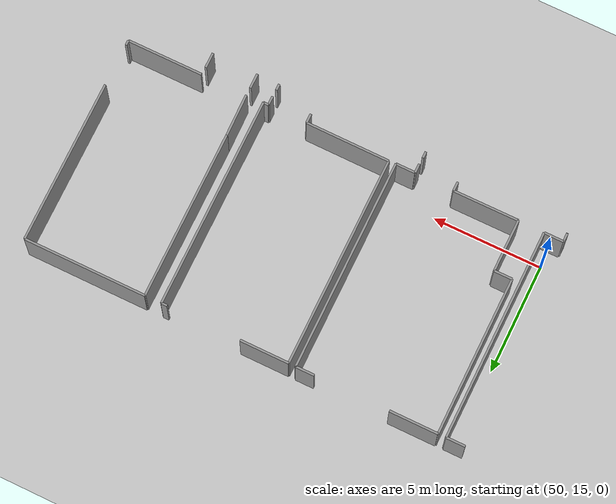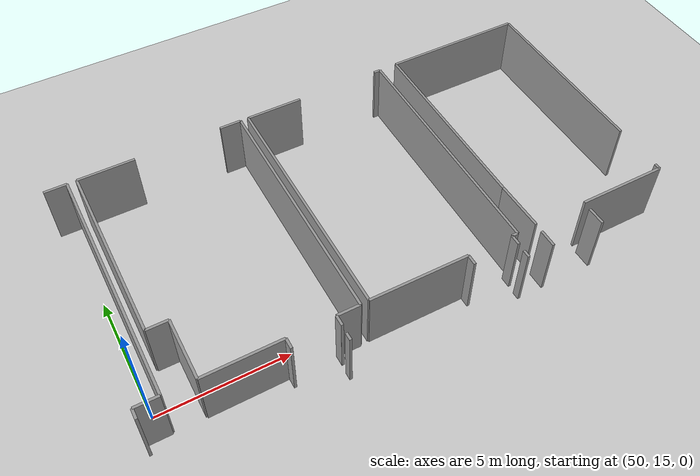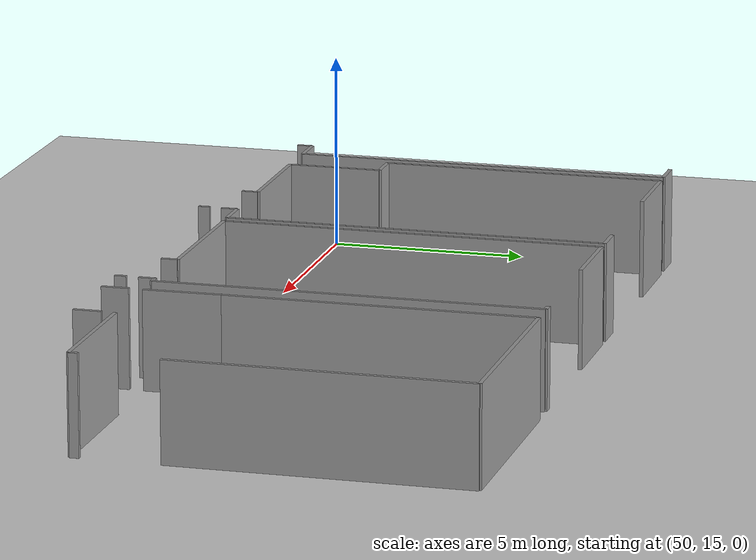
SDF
<sdf version="1.6">
 <world name="default">
  <model name="ground_plane">
   <static>1</static>
   <link name="link">
    <collision name="collision">
     <geometry><plane><normal>0 0 1</normal><size>100 100</size></plane></geometry>
     <surface><friction><ode><mu>100</mu><mu2>50</mu2></ode></friction></surface>
    </collision>
    <visual name="visual">
     <cast_shadows>0</cast_shadows>
     <geometry><plane><normal>0 0 1</normal><size>100 100</size></plane></geometry>
     <material>
      <script><uri>file://media/materials/scripts/gazebo.material</uri><name>Gazebo/Grey</name></script>
     </material>
    </visual>
   </link>
  </model>
  <model name="0510032197_A_40_1_105">
   <static>1</static>
   <link name="Wall_170">
    <collision name="Wall_170_Collision">
     <geometry><box><size>0.865542266679 0.1 2.5</size></box></geometry>
     <pose>0.432771133339 0 1.25 0 0 0</pose>
    </collision>
    <visual name="Wall_170_Visual">
     <pose>0.432771133339 0 1.25 0 0 0</pose>
     <geometry><box><size>0.865542266679 0.1 2.5</size></box></geometry>
     <material>
      <script><uri>file://media/materials/scripts/gazebo.material</uri><name>Gazebo/Grey</name></script>
      <ambient>1 1 1 1</ambient>
     </material>
    </visual>
    <pose>115.051030135 -0.327025000318 0 0 0 0.0</pose>
   </link>
   <link name="Wall_171">
    <collision name="Wall_171_Collision">
     <geometry><box><size>9.62963433699 0.1 2.5</size></box></geometry>
     <pose>4.81481716849 0 1.25 0 0 0</pose>
    </collision>
    <visual name="Wall_171_Visual">
     <pose>4.81481716849 0 1.25 0 0 0</pose>
     <geometry><box><size>9.62963433699 0.1 2.5</size></box></geometry>
     <material>
      <script><uri>file://media/materials/scripts/gazebo.material</uri><name>Gazebo/Grey</name></script>
      <ambient>1 1 1 1</ambient>
     </material>
    </visual>
    <pose>115.916572402 -0.327025000318 0 0 0 -1.57079632679</pose>
   </link>
   <link name="Wall_172">
    <collision name="Wall_172_Collision">
     <geometry><box><size>0.888420035842 0.1 2.5</size></box></geometry>
     <pose>0.444210017921 0 1.25 0 0 0</pose>
    </collision>
    <visual name="Wall_172_Visual">
     <pose>0.444210017921 0 1.25 0 0 0</pose>
     <geometry><box><size>0.888420035842 0.1 2.5</size></box></geometry>
     <material>
      <script><uri>file://media/materials/scripts/gazebo.material</uri><name>Gazebo/Grey</name></script>
      <ambient>1 1 1 1</ambient>
     </material>
    </visual>
    <pose>115.916572402 -9.95665933731 0 0 0 3.14159265359</pose>
   </link>
   <link name="Wall_173">
    <collision name="Wall_173_Collision">
     <geometry><box><size>0.401123552663 0.1 2.5</size></box></geometry>
     <pose>0.200561776332 0 1.25 0 0 0</pose>
    </collision>
    <visual name="Wall_173_Visual">
     <pose>0.200561776332 0 1.25 0 0 0</pose>
     <geometry><box><size>0.401123552663 0.1 2.5</size></box></geometry>
     <material>
      <script><uri>file://media/materials/scripts/gazebo.material</uri><name>Gazebo/Grey</name></script>
      <ambient>1 1 1 1</ambient>
     </material>
    </visual>
    <pose>115.028152366 -9.95665933731 0 0 0 -1.57079632679</pose>
   </link>
   <link name="Wall_174">
    <collision name="Wall_174_Collision">
     <geometry><box><size>0.0219880781403 0.1 2.5</size></box></geometry>
     <pose>0.0109940390701 0 1.25 0 0 0</pose>
    </collision>
    <visual name="Wall_174_Visual">
     <pose>0.0109940390701 0 1.25 0 0 0</pose>
     <geometry><box><size>0.0219880781403 0.1 2.5</size></box></geometry>
     <material>
      <script><uri>file://media/materials/scripts/gazebo.material</uri><name>Gazebo/Grey</name></script>
      <ambient>1 1 1 1</ambient>
     </material>
    </visual>
    <pose>115.028152366 -10.35778289 0 0 0 1.57079632679</pose>
   </link>
   <link name="Wall_177">
    <collision name="Wall_177_Collision">
     <geometry><box><size>2.4025470583 0.1 2.5</size></box></geometry>
     <pose>1.20127352915 0 1.25 0 0 0</pose>
    </collision>
    <visual name="Wall_177_Visual">
     <pose>1.20127352915 0 1.25 0 0 0</pose>
     <geometry><box><size>2.4025470583 0.1 2.5</size></box></geometry>
     <material>
      <script><uri>file://media/materials/scripts/gazebo.material</uri><name>Gazebo/Grey</name></script>
      <ambient>1 1 1 1</ambient>
     </material>
    </visual>
    <pose>117.098590475 -9.96708143215 0 0 0 1.57079632679</pose>
   </link>
   <link name="Wall_178">
    <collision name="Wall_178_Collision">
     <geometry><box><size>0.817244754 0.1 2.5</size></box></geometry>
     <pose>0.408622377 0 1.25 0 0 0</pose>
    </collision>
    <visual name="Wall_178_Visual">
     <pose>0.408622377 0 1.25 0 0 0</pose>
     <geometry><box><size>0.817244754 0.1 2.5</size></box></geometry>
     <material>
      <script><uri>file://media/materials/scripts/gazebo.material</uri><name>Gazebo/Grey</name></script>
      <ambient>1 1 1 1</ambient>
     </material>
    </visual>
    <pose>117.098590475 -7.56453437385 0 0 0 3.14159265359</pose>
   </link>
   <link name="Wall_179">
    <collision name="Wall_179_Collision">
     <geometry><box><size>7.24971085042 0.1 2.5</size></box></geometry>
     <pose>3.62485542521 0 1.25 0 0 0</pose>
    </collision>
    <visual name="Wall_179_Visual">
     <pose>3.62485542521 0 1.25 0 0 0</pose>
     <geometry><box><size>7.24971085042 0.1 2.5</size></box></geometry>
     <material>
      <script><uri>file://media/materials/scripts/gazebo.material</uri><name>Gazebo/Grey</name></script>
      <ambient>1 1 1 1</ambient>
     </material>
    </visual>
    <pose>116.281345721 -7.56453437385 0 0 0 1.57079632679</pose>
   </link>
   <link name="Wall_180">
    <collision name="Wall_180_Collision">
     <geometry><box><size>2.20770472426 0.1 2.5</size></box></geometry>
     <pose>1.10385236213 0 1.25 0 0 0</pose>
    </collision>
    <visual name="Wall_180_Visual">
     <pose>1.10385236213 0 1.25 0 0 0</pose>
     <geometry><box><size>2.20770472426 0.1 2.5</size></box></geometry>
     <material>
      <script><uri>file://media/materials/scripts/gazebo.material</uri><name>Gazebo/Grey</name></script>
      <ambient>1 1 1 1</ambient>
     </material>
    </visual>
    <pose>116.281345721 -0.314823523431 0 0 0 0.0</pose>
   </link>
   <link name="Wall_181">
    <collision name="Wall_181_Collision">
     <geometry><box><size>0.851561407745 0.1 2.5</size></box></geometry>
     <pose>0.425780703873 0 1.25 0 0 0</pose>
    </collision>
    <visual name="Wall_181_Visual">
     <pose>0.425780703873 0 1.25 0 0 0</pose>
     <geometry><box><size>0.851561407745 0.1 2.5</size></box></geometry>
     <material>
      <script><uri>file://media/materials/scripts/gazebo.material</uri><name>Gazebo/Grey</name></script>
      <ambient>1 1 1 1</ambient>
     </material>
    </visual>
    <pose>121.904192987 -0.314823523431 0 0 0 0.0</pose>
   </link>
   <link name="Wall_182">
    <collision name="Wall_182_Collision">
     <geometry><box><size>9.65340179718 0.1 2.5</size></box></geometry>
     <pose>4.82670089859 0 1.25 0 0 0</pose>
    </collision>
    <visual name="Wall_182_Visual">
     <pose>4.82670089859 0 1.25 0 0 0</pose>
     <geometry><box><size>9.65340179718 0.1 2.5</size></box></geometry>
     <material>
      <script><uri>file://media/materials/scripts/gazebo.material</uri><name>Gazebo/Grey</name></script>
      <ambient>1 1 1 1</ambient>
     </material>
    </visual>
    <pose>122.755754394 -0.314823523431 0 0 0 -1.57079632679</pose>
   </link>
   <link name="Wall_183">
    <collision name="Wall_183_Collision">
     <geometry><box><size>0.889691023018 0.1 2.5</size></box></geometry>
     <pose>0.444845511509 0 1.25 0 0 0</pose>
    </collision>
    <visual name="Wall_183_Visual">
     <pose>0.444845511509 0 1.25 0 0 0</pose>
     <geometry><box><size>0.889691023018 0.1 2.5</size></box></geometry>
     <material>
      <script><uri>file://media/materials/scripts/gazebo.material</uri><name>Gazebo/Grey</name></script>
      <ambient>1 1 1 1</ambient>
     </material>
    </visual>
    <pose>122.755754394 -9.96822532061 0 0 0 3.14159265359</pose>
   </link>
   <link name="Wall_184">
    <collision name="Wall_184_Collision">
     <geometry><box><size>0.411545647504 0.1 2.5</size></box></geometry>
     <pose>0.205772823752 0 1.25 0 0 0</pose>
    </collision>
    <visual name="Wall_184_Visual">
     <pose>0.205772823752 0 1.25 0 0 0</pose>
     <geometry><box><size>0.411545647504 0.1 2.5</size></box></geometry>
     <material>
      <script><uri>file://media/materials/scripts/gazebo.material</uri><name>Gazebo/Grey</name></script>
      <ambient>1 1 1 1</ambient>
     </material>
    </visual>
    <pose>121.866063371 -9.96822532061 0 0 0 -1.57079632679</pose>
   </link>
   <link name="Wall_185">
    <collision name="Wall_185_Collision">
     <geometry><box><size>0.0063549358787 0.1 2.5</size></box></geometry>
     <pose>0.00317746793935 0 1.25 0 0 0</pose>
    </collision>
    <visual name="Wall_185_Visual">
     <pose>0.00317746793935 0 1.25 0 0 0</pose>
     <geometry><box><size>0.0063549358787 0.1 2.5</size></box></geometry>
     <material>
      <script><uri>file://media/materials/scripts/gazebo.material</uri><name>Gazebo/Grey</name></script>
      <ambient>1 1 1 1</ambient>
     </material>
    </visual>
    <pose>121.866063371 -10.3797709681 0 0 0 1.57079632679</pose>
   </link>
   <link name="Wall_186">
    <collision name="Wall_186_Collision">
     <geometry><box><size>0.417137991078 0.1 2.5</size></box></geometry>
     <pose>0.208568995539 0 1.25 0 0 0</pose>
    </collision>
    <visual name="Wall_186_Visual">
     <pose>0.208568995539 0 1.25 0 0 0</pose>
     <geometry><box><size>0.417137991078 0.1 2.5</size></box></geometry>
     <material>
      <script><uri>file://media/materials/scripts/gazebo.material</uri><name>Gazebo/Grey</name></script>
      <ambient>1 1 1 1</ambient>
     </material>
    </visual>
    <pose>120.08032639 -10.3734160322 0 0 0 1.57079632679</pose>
   </link>
   <link name="Wall_187">
    <collision name="Wall_187_Collision">
     <geometry><box><size>2.98175548558 0.1 2.5</size></box></geometry>
     <pose>1.49087774279 0 1.25 0 0 0</pose>
    </collision>
    <visual name="Wall_187_Visual">
     <pose>1.49087774279 0 1.25 0 0 0</pose>
     <geometry><box><size>2.98175548558 0.1 2.5</size></box></geometry>
     <material>
      <script><uri>file://media/materials/scripts/gazebo.material</uri><name>Gazebo/Grey</name></script>
      <ambient>1 1 1 1</ambient>
     </material>
    </visual>
    <pose>120.08032639 -9.95627804115 0 0 0 -3.13796948104</pose>
   </link>
   <link name="Wall_188">
    <collision name="Wall_188_Collision">
     <geometry><box><size>9.62976143571 0.1 2.5</size></box></geometry>
     <pose>4.81488071785 0 1.25 0 0 0</pose>
    </collision>
    <visual name="Wall_188_Visual">
     <pose>4.81488071785 0 1.25 0 0 0</pose>
     <geometry><box><size>9.62976143571 0.1 2.5</size></box></geometry>
     <material>
      <script><uri>file://media/materials/scripts/gazebo.material</uri><name>Gazebo/Grey</name></script>
      <ambient>1 1 1 1</ambient>
     </material>
    </visual>
    <pose>123.076043163 -9.94788952579 0 0 0 1.57079632679</pose>
   </link>
   <link name="Wall_189">
    <collision name="Wall_189_Collision">
     <geometry><box><size>2.22931150625 0.1 2.5</size></box></geometry>
     <pose>1.11465575312 0 1.25 0 0 0</pose>
    </collision>
    <visual name="Wall_189_Visual">
     <pose>1.11465575312 0 1.25 0 0 0</pose>
     <geometry><box><size>2.22931150625 0.1 2.5</size></box></geometry>
     <material>
      <script><uri>file://media/materials/scripts/gazebo.material</uri><name>Gazebo/Grey</name></script>
      <ambient>1 1 1 1</ambient>
     </material>
    </visual>
    <pose>123.076043163 -0.318128090088 0 0 0 0.0</pose>
   </link>
   <link name="Wall_190">
    <collision name="Wall_190_Collision">
     <geometry><box><size>0.266907306905 0.1 2.5</size></box></geometry>
     <pose>0.133453653453 0 1.25 0 0 0</pose>
    </collision>
    <visual name="Wall_190_Visual">
     <pose>0.133453653453 0 1.25 0 0 0</pose>
     <geometry><box><size>0.266907306905 0.1 2.5</size></box></geometry>
     <material>
      <script><uri>file://media/materials/scripts/gazebo.material</uri><name>Gazebo/Grey</name></script>
      <ambient>1 1 1 1</ambient>
     </material>
    </visual>
    <pose>128.665844762 -0.318128090088 0 0 0 0.0</pose>
   </link>
   <link name="Wall_191">
    <collision name="Wall_191_Collision">
     <geometry><box><size>9.65213081 0.1 2.5</size></box></geometry>
     <pose>4.826065405 0 1.25 0 0 0</pose>
    </collision>
    <visual name="Wall_191_Visual">
     <pose>4.826065405 0 1.25 0 0 0</pose>
     <geometry><box><size>9.65213081 0.1 2.5</size></box></geometry>
     <material>
      <script><uri>file://media/materials/scripts/gazebo.material</uri><name>Gazebo/Grey</name></script>
      <ambient>1 1 1 1</ambient>
     </material>
    </visual>
    <pose>128.932752069 -0.318128090088 0 0 0 -1.57079632679</pose>
   </link>
   <link name="Wall_192">
    <collision name="Wall_192_Collision">
     <geometry><box><size>0.235132627512 0.1 2.5</size></box></geometry>
     <pose>0.117566313756 0 1.25 0 0 0</pose>
    </collision>
    <visual name="Wall_192_Visual">
     <pose>0.117566313756 0 1.25 0 0 0</pose>
     <geometry><box><size>0.235132627512 0.1 2.5</size></box></geometry>
     <material>
      <script><uri>file://media/materials/scripts/gazebo.material</uri><name>Gazebo/Grey</name></script>
      <ambient>1 1 1 1</ambient>
     </material>
    </visual>
    <pose>128.932752069 -9.97025890009 0 0 0 3.14159265359</pose>
   </link>
   <link name="Wall_193">
    <collision name="Wall_193_Collision">
     <geometry><box><size>0.406970093672 0.1 2.5</size></box></geometry>
     <pose>0.203485046836 0 1.25 0 0 0</pose>
    </collision>
    <visual name="Wall_193_Visual">
     <pose>0.203485046836 0 1.25 0 0 0</pose>
     <geometry><box><size>0.406970093672 0.1 2.5</size></box></geometry>
     <material>
      <script><uri>file://media/materials/scripts/gazebo.material</uri><name>Gazebo/Grey</name></script>
      <ambient>1 1 1 1</ambient>
     </material>
    </visual>
    <pose>128.697619441 -9.97025890009 0 0 0 -1.57079632679</pose>
   </link>
   <link name="Wall_194">
    <collision name="Wall_194_Collision">
     <geometry><box><size>0.415104411596 0.1 2.5</size></box></geometry>
     <pose>0.207552205798 0 1.25 0 0 0</pose>
    </collision>
    <visual name="Wall_194_Visual">
     <pose>0.207552205798 0 1.25 0 0 0</pose>
     <geometry><box><size>0.415104411596 0.1 2.5</size></box></geometry>
     <material>
      <script><uri>file://media/materials/scripts/gazebo.material</uri><name>Gazebo/Grey</name></script>
      <ambient>1 1 1 1</ambient>
     </material>
    </visual>
    <pose>126.908069498 -10.3772289938 0 0 0 1.57079632679</pose>
   </link>
   <link name="Wall_195">
    <collision name="Wall_195_Collision">
     <geometry><box><size>3.83205277467 0.1 2.5</size></box></geometry>
     <pose>1.91602638733 0 1.25 0 0 0</pose>
    </collision>
    <visual name="Wall_195_Visual">
     <pose>1.91602638733 0 1.25 0 0 0</pose>
     <geometry><box><size>3.83205277467 0.1 2.5</size></box></geometry>
     <material>
      <script><uri>file://media/materials/scripts/gazebo.material</uri><name>Gazebo/Grey</name></script>
      <ambient>1 1 1 1</ambient>
     </material>
    </visual>
    <pose>126.908069498 -9.96212458216 0 0 0 3.13787791114</pose>
   </link>
   <link name="Wall_196">
    <collision name="Wall_196_Collision">
     <geometry><box><size>7.70408876574 0.1 2.5</size></box></geometry>
     <pose>3.85204438287 0 1.25 0 0 0</pose>
    </collision>
    <visual name="Wall_196_Visual">
     <pose>3.85204438287 0 1.25 0 0 0</pose>
     <geometry><box><size>7.70408876574 0.1 2.5</size></box></geometry>
     <material>
      <script><uri>file://media/materials/scripts/gazebo.material</uri><name>Gazebo/Grey</name></script>
      <ambient>1 1 1 1</ambient>
     </material>
    </visual>
    <pose>129.691531412 -8.00785470075 0 0 0 1.57079632679</pose>
   </link>
   <link name="Wall_197">
    <collision name="Wall_197_Collision">
     <geometry><box><size>5.59615653478 0.1 2.5</size></box></geometry>
     <pose>2.79807826739 0 1.25 0 0 0</pose>
    </collision>
    <visual name="Wall_197_Visual">
     <pose>2.79807826739 0 1.25 0 0 0</pose>
     <geometry><box><size>5.59615653478 0.1 2.5</size></box></geometry>
     <material>
      <script><uri>file://media/materials/scripts/gazebo.material</uri><name>Gazebo/Grey</name></script>
      <ambient>1 1 1 1</ambient>
     </material>
    </visual>
    <pose>129.691531412 -0.303765935002 0 0 0 0.0</pose>
   </link>
   <link name="Wall_198">
    <collision name="Wall_198_Collision">
     <geometry><box><size>7.46018632672 0.1 2.5</size></box></geometry>
     <pose>3.73009316336 0 1.25 0 0 0</pose>
    </collision>
    <visual name="Wall_198_Visual">
     <pose>3.73009316336 0 1.25 0 0 0</pose>
     <geometry><box><size>7.46018632672 0.1 2.5</size></box></geometry>
     <material>
      <script><uri>file://media/materials/scripts/gazebo.material</uri><name>Gazebo/Grey</name></script>
      <ambient>1 1 1 1</ambient>
     </material>
    </visual>
    <pose>135.287687947 -0.303765935002 0 0 0 -1.57079632679</pose>
   </link>
   <link name="Wall_199">
    <collision name="Wall_199_Collision">
     <geometry><box><size>0.23208225829 0.1 2.5</size></box></geometry>
     <pose>0.116041129145 0 1.25 0 0 0</pose>
    </collision>
    <visual name="Wall_199_Visual">
     <pose>0.116041129145 0 1.25 0 0 0</pose>
     <geometry><box><size>0.23208225829 0.1 2.5</size></box></geometry>
     <material>
      <script><uri>file://media/materials/scripts/gazebo.material</uri><name>Gazebo/Grey</name></script>
      <ambient>1 1 1 1</ambient>
     </material>
    </visual>
    <pose>135.287687947 -9.7201286239 0 0 0 -1.57079632679</pose>
   </link>
   <link name="Wall_200">
    <collision name="Wall_200_Collision">
     <geometry><box><size>3.45454314366 0.1 2.5</size></box></geometry>
     <pose>1.72727157183 0 1.25 0 0 0</pose>
    </collision>
    <visual name="Wall_200_Visual">
     <pose>1.72727157183 0 1.25 0 0 0</pose>
     <geometry><box><size>3.45454314366 0.1 2.5</size></box></geometry>
     <material>
      <script><uri>file://media/materials/scripts/gazebo.material</uri><name>Gazebo/Grey</name></script>
      <ambient>1 1 1 1</ambient>
     </material>
    </visual>
    <pose>135.287687947 -9.95221088219 0 0 0 3.14159265359</pose>
   </link>
   <link name="Wall_201">
    <collision name="Wall_201_Collision">
     <geometry><box><size>1.94468183529 0.1 2.5</size></box></geometry>
     <pose>0.972340917646 0 1.25 0 0 0</pose>
    </collision>
    <visual name="Wall_201_Visual">
     <pose>0.972340917646 0 1.25 0 0 0</pose>
     <geometry><box><size>1.94468183529 0.1 2.5</size></box></geometry>
     <material>
      <script><uri>file://media/materials/scripts/gazebo.material</uri><name>Gazebo/Grey</name></script>
      <ambient>1 1 1 1</ambient>
     </material>
    </visual>
    <pose>129.727119053 -9.95221088219 0 0 0 1.58909732951</pose>
   </link>
   <link name="Wall_511">
    <collision name="Wall_511_Collision">
     <geometry><box><size>0.296902604253 0.1 2.5</size></box></geometry>
     <pose>0.148451302126 0 1.25 0 0 0</pose>
    </collision>
    <visual name="Wall_511_Visual">
     <pose>0.148451302126 0 1.25 0 0 0</pose>
     <geometry><box><size>0.296902604253 0.1 2.5</size></box></geometry>
     <material>
      <script><uri>file://media/materials/scripts/gazebo.material</uri><name>Gazebo/Grey</name></script>
      <ambient>1 1 1 1</ambient>
     </material>
    </visual>
    <pose>121.843185602 -10.6893834441 0 0 0 -1.57079632679</pose>
   </link>
   <link name="Wall_514">
    <collision name="Wall_514_Collision">
     <geometry><box><size>0.290674767092 0.1 2.5</size></box></geometry>
     <pose>0.145337383546 0 1.25 0 0 0</pose>
    </collision>
    <visual name="Wall_514_Visual">
     <pose>0.145337383546 0 1.25 0 0 0</pose>
     <geometry><box><size>0.290674767092 0.1 2.5</size></box></geometry>
     <material>
      <script><uri>file://media/materials/scripts/gazebo.material</uri><name>Gazebo/Grey</name></script>
      <ambient>1 1 1 1</ambient>
     </material>
    </visual>
    <pose>128.679825621 -10.6956112813 0 0 0 -1.57079632679</pose>
   </link>
   <link name="Wall_516">
    <collision name="Wall_516_Collision">
     <geometry><box><size>0.688747950533 0.1 2.5</size></box></geometry>
     <pose>0.344373975267 0 1.25 0 0 0</pose>
    </collision>
    <visual name="Wall_516_Visual">
     <pose>0.344373975267 0 1.25 0 0 0</pose>
     <geometry><box><size>0.688747950533 0.1 2.5</size></box></geometry>
     <material>
      <script><uri>file://media/materials/scripts/gazebo.material</uri><name>Gazebo/Grey</name></script>
      <ambient>1 1 1 1</ambient>
     </material>
    </visual>
    <pose>129.71059622 -10.9862860484 0 0 0 1.57079632679</pose>
   </link>
   <link name="Wall_517">
    <collision name="Wall_517_Collision">
     <geometry><box><size>0.702093315878 0.1 2.5</size></box></geometry>
     <pose>0.351046657939 0 1.25 0 0 0</pose>
    </collision>
    <visual name="Wall_517_Visual">
     <pose>0.351046657939 0 1.25 0 0 0</pose>
     <geometry><box><size>0.702093315878 0.1 2.5</size></box></geometry>
     <material>
      <script><uri>file://media/materials/scripts/gazebo.material</uri><name>Gazebo/Grey</name></script>
      <ambient>1 1 1 1</ambient>
     </material>
    </visual>
    <pose>131.80772506 -10.2975380978 0 0 0 -1.57079632679</pose>
   </link>
   <pose>-65.5 24.1613162343 0 0 0 0</pose>
  </model>
 </world>
</sdf>
